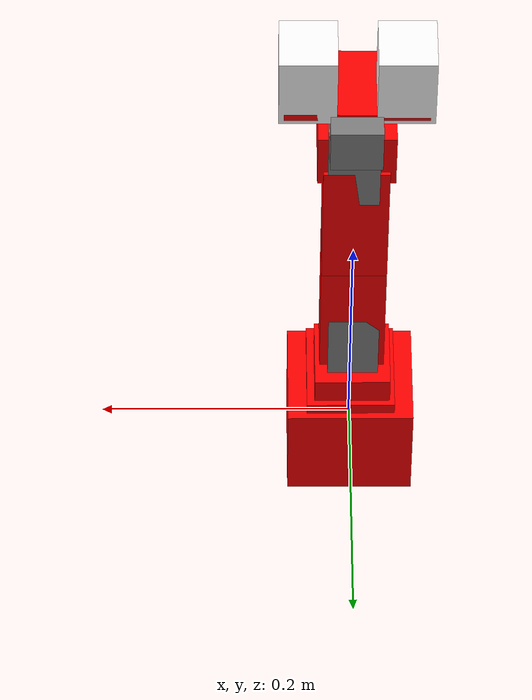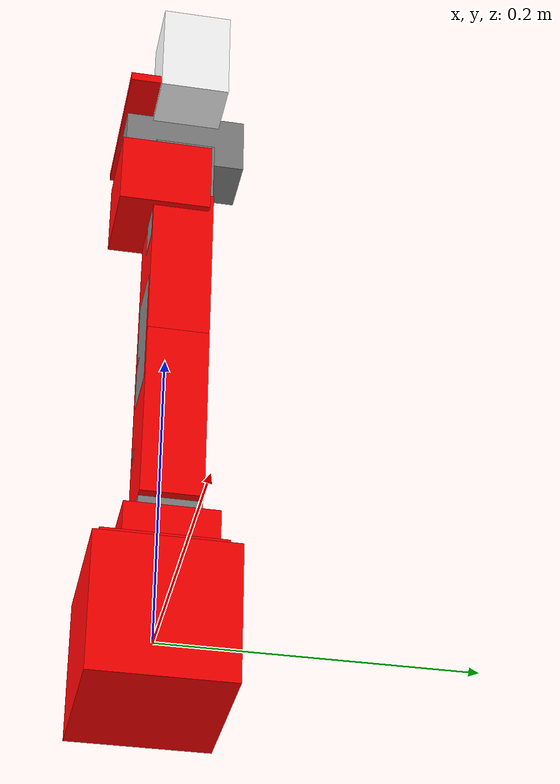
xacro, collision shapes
<?xml version="1.0"?>

<robot xmlns:xacro="http://www.ros.org/wiki/xacro" name="arm">

  <material name="red">
    <color rgba="1 0 0 1"/>
  </material>

  <material name="gray">
    <color rgba="0.5 0.5 0.5 1.0"/>
  </material>

  <material name="purple">
    <color rgba="0.20784313725490197 0.023529411764705882 0.24313725490196078 1.0"/>
  </material>

  <link name="base_link">
    <visual>
      <geometry>
        <mesh filename="package://arm_description/meshes/base_link.stl" scale="0.001 0.001 0.001"/>
      </geometry>
      <origin rpy="0 0 0" xyz="0 0 0"/>
      <material name="red"/>
    </visual>
    <collision>
      <geometry>
        <box size="0.1 0.09 0.09"/>
      </geometry>
      <origin rpy="0 0 0" xyz="0 0 0"/>
    </collision>
    <inertial>
      <mass value="0.1"/>
      <inertia ixx="1.06682889e+08" ixy="0.0" ixz="0.0" iyy="9.92165844e+07" iyz="0.0" izz="1.26939175e+08"/>
    </inertial>
  </link>

  <joint name="base_1_2" type="fixed">
    <parent link="base_link"/>
    <child link="base_turn"/>
    <origin xyz="-0.0011 -0.011 0.05"/>
  </joint>

  <link name="base_turn">
    <visual>
      <geometry>
        <mesh filename="package://arm_description/meshes/base_turn.stl" scale="0.001 0.001 0.001"/>
      </geometry>
      <origin rpy="0 0 0" xyz="0 0 0"/>
      <material name="red"/>
    </visual>
    <collision>
      <geometry>
        <box size="0.07 0.079 0.01"/>
      </geometry>
      <origin rpy="0 0 0" xyz="0.0011 0.011 0"/>
    </collision>
    <inertial>
      <mass value="0.1"/>
      <inertia ixx="1.35223008e+07" ixy="0.0" ixz="0.0" iyy="8.13814925e+06" iyz="0.0" izz="2.14903814e+07"/>
    </inertial>
  </link>

  <joint name="j0" type="revolute">
    <parent link="base_turn"/>
    <child link="base_turn_rot"/>
    <origin xyz="-0.0 0.0155 0.013" rpy = "0 0 -1.57"/>
    <axis xyz="0 0 1" />
    <limit effort="300" velocity="0.1" lower="-2.57" upper="2.57"/>
  </joint>

  <link name="base_turn_rot">
    <visual>
      <geometry>
        <mesh filename="package://arm_description/meshes/base_turn_table_rot.stl" scale="0.001 0.001 0.001"/>
      </geometry>
      <material name="red"/>
    </visual>
    <collision>
      <geometry>
        <box size="0.06 0.06 0.03"/>
      </geometry>
      <origin rpy="0 0 0" xyz="0 0 0"/>
    </collision>
    <inertial>
      <mass value="0.1"/>
      <inertia ixx="0.001" ixy="0.0" ixz="0.0" iyy="0.001" iyz="0.0" izz="0.001"/>
    </inertial>
  </link>

  <joint name="base_turn_rot_dyn2" type="fixed">
    <parent link="base_turn_rot"/>
    <child link="dyn2"/>
    <origin xyz="0 0 0.0385" rpy="0 1.57 1.57 "/>
  </joint>

  <link name="dyn2">
    <visual>
      <geometry>
        <mesh filename="package://arm_description/meshes/dyn.stl" scale="0.01 0.01 0.01"/>
      </geometry>
      <origin rpy="0 0 0" xyz="0 0 0"/>
      <material name="gray"/>
    </visual>
    <collision>
      <geometry>
        <box size="0.08 0.04 0.04"/>
      </geometry>
      <origin rpy="0 0 0" xyz="0 0 0"/>
    </collision>
    <inertial>
      <mass value="0.1"/>
      <inertia ixx="6.90013881e-05" ixy="0.0" ixz="0.0" iyy="1.24554875e-04" iyz="0.0" izz="1.04295793e-04"/>
    </inertial>
  </link>

  <joint name="j1" type="revolute">
    <parent link="dyn2"/>
    <child link="dyn2_r"/>
    <origin xyz="0 0 0.0" rpy="0 0 0"/>
    <axis xyz="0 0 1" />
    <limit effort="300" velocity="0.1" lower="-2" upper="2"/>
  </joint>

  <link name="dyn2_r">
  </link>

  <joint name="dyn2_f4" type="fixed">
    <parent link="dyn2_r"/>
    <child link="f4"/>
    <origin xyz="-0.047 0.0 -0.003" rpy="0 1.57 1.57"/>
  </joint>

  <link name="f4">
    <visual>
      <geometry>
        <mesh filename="package://arm_description/meshes/f4_n_f3.stl" scale="0.001 0.001 0.001"/>
      </geometry>
      <origin rpy="0 0 0" xyz="0 0 0"/>
      <material name="red"/>
    </visual>
    <collision>
      <geometry>
        <box size="0.051 0.12 0.04"/>
      </geometry>
      <origin rpy="0 0 0" xyz="-0.004 0.0 0"/>
    </collision>
     <inertial>
      <mass value="0.1"/>
      <inertia ixx="6.90013881e-05" ixy="0.0" ixz="0.0" iyy="1.24554875e-04" iyz="0.0" izz="1.04295793e-04"/>
    </inertial>
  </link>

  <joint name="d4_dyn3" type="fixed">
    <parent link="f4"/>
    <child link="dyn3"/>
    <origin xyz="-0.004 0.0645 0 " rpy="-1.57 3.14 1.57"/>
  </joint>

  <link name="dyn3">
    <visual>
      <geometry>
        <mesh filename="package://arm_description/meshes/dyn.stl" scale="0.01 0.01 0.01"/>
      </geometry>
      <origin rpy="0 0 0" xyz="0 0 0"/>
      <material name="gray"/>
    </visual>
    <collision>
      <geometry>
        <box size="0.08 0.04 0.04"/>
      </geometry>
      <origin rpy="0 0 0" xyz="0 0 0"/>
    </collision>
     <inertial>
      <mass value="0.1"/>
      <inertia ixx="6.90013881e-05" ixy="0.0" ixz="0.0" iyy="1.24554875e-04" iyz="0.0" izz="1.04295793e-04"/>
    </inertial>
  </link>

  <joint name="j2" type="revolute">
    <parent link="dyn3"/>
    <child link="dyn3_r"/>
    <origin xyz="0 0 0.0" rpy="0 0 0"/>
    <axis xyz="0 0 1" />
    <limit effort="300" velocity="0.1" lower="-3.14" upper="3.14"/>
  </joint>

  <link name="dyn3_r">
  </link>

  <joint name="dyn3_f5" type="fixed">
    <parent link="dyn3_r"/>
    <child link="f5"/>
    <origin xyz="-0.046 -0.0 -0.002" rpy="1.57 1.57 3.1415 "/>
  </joint>

  <link name="f5">
    <visual>
      <geometry>
        <mesh filename="package://arm_description/meshes/f4_n_f3.stl" scale="0.001 0.001 0.001"/>
      </geometry>
      <origin rpy="0 0 0" xyz="0 0 0"/>
      <material name="red"/>
    </visual>
    <collision>
      <geometry>
        <box size="0.051 0.12 0.04"/>
      </geometry>
      <origin rpy="0 0 0" xyz="-0.002 0.0 0"/>
    </collision>
    <inertial>
      <mass value="0.1"/>
      <inertia ixx="0.001" ixy="0.0" ixz="0.0" iyy="0.001" iyz="0.0" izz="0.001"/>
      </inertial>
  </link>

  <joint name="f5_dyn4" type="fixed">
    <parent link="f5"/>
    <child link="dyn4"/>
    <origin xyz="-0.004 0.065 -0.0" rpy="-1.57 3.1415 1.57 "/>
  </joint>

  <link name="dyn4">
    <visual>
      <geometry>
        <mesh filename="package://arm_description/meshes/dyn.stl" scale="0.01 0.01 0.01"/>
      </geometry>
      <origin rpy="0 0 0" xyz="0 0 0"/>
      <material name="gray"/>
    </visual>
    <collision>
      <geometry>
        <box size="0.08 0.04 0.04"/>
      </geometry>
      <origin rpy="0 0 0" xyz="0 0 0"/>
    </collision>
    <inertial>
      <mass value="0.1"/>
      <inertia ixx="6.90013881e-05" ixy="0.0" ixz="0.0" iyy="1.24554875e-04" iyz="0.0" izz="1.04295793e-04"/>
    </inertial>
  </link>

  <joint name="j3" type="revolute">
    <parent link="dyn4"/>
    <child link="dyn4_r"/>
    <origin xyz="0 0 0.0" rpy="0 0 0"/>
    <axis xyz="0 0 1" />
    <limit effort="300" velocity="0.1" lower="-3.14" upper="3.14"/>
  </joint>

  <link name="dyn4_r">
  </link>

  <joint name="f5_wrist" type="fixed">
    <parent link="dyn4_r"/>
    <child link="wrist"/>
    <origin xyz="-0.017 -0.013 0.003" rpy="1.57 1.57 -1.57"/>
  </joint>

  <link name="wrist">
    <visual>
      <geometry>
        <mesh filename="package://arm_description/meshes/wrist.stl" scale="0.001 0.001 0.001"/>
      </geometry>
      <origin rpy="0 0 0" xyz="0 0 0"/>
      <material name="red"/>
    </visual>
    <collision>
      <geometry>
        <box size="0.06 0.06 0.05"/>
      </geometry>
      <origin rpy="0 0 0" xyz="0.005 0 -0.01"/>
    </collision>
    <inertial>
      <mass value="0.1"/>
      <inertia ixx="6.90013881e-05" ixy="0.0" ixz="0.0" iyy="1.24554875e-04" iyz="0.0" izz="1.04295793e-04"/>
    </inertial>
  </link>

  <joint name="wrist_dyn5" type="fixed">
    <parent link="wrist"/>
    <child link="dyn5"/>
    <origin xyz="0.0038 -0.013 0.0275" rpy="0 0 1.57"/>
  </joint>

  <link name="dyn5">
    <visual>
      <geometry>
        <mesh filename="package://arm_description/meshes/dyn.stl" scale="0.01 0.01 0.01"/>
      </geometry>
      <origin rpy="0 0 0" xyz="0 0 0"/>
      <material name="gray"/>
    </visual>
    <collision>
      <geometry>
        <box size="0.08 0.04 0.04"/>
      </geometry>
      <origin rpy="0 0 0" xyz="0 0 0"/>
    </collision>
    <inertial>
      <mass value="0.1"/>
      <inertia ixx="6.90013881e-05" ixy="0.0" ixz="0.0" iyy="1.24554875e-04" iyz="0.0" izz="1.04295793e-04"/>
    </inertial>
  </link>

  <joint name="dyn5_dyn5_r" type="fixed">
    <parent link="dyn5"/>
    <child link="dyn5_r"/>
    <origin xyz="0 0 0.0" rpy="0 0 0"/>
    <axis xyz="0 0 1" />
    <limit effort="300" velocity="0.1" lower="-3.14" upper="3.14"/>
  </joint>

  <link name="dyn5_r">
  </link>

  <joint name="wrist_rotate_dyn5" type="fixed">
    <parent link="dyn5_r"/>
    <child link="crawer_base"/>
    <origin xyz="0.015 0 0.019" rpy="0 0 1.57"/>
  </joint>

  <link name="crawer_base">
    <visual>
      <geometry>
        <mesh filename="package://arm_description/meshes/the_crawer_base.stl" scale="0.001 0.001 0.001"/>
      </geometry>
      <origin rpy="0 0 0" xyz="0 0 0"/>
      <material name="red"/>
    </visual>
    <collision>
      <geometry>
        <box size="0.11 0.065 0.006"/>
      </geometry>
      <origin rpy="0 0 0" xyz="0 0.005 0"/>
    </collision>
    <inertial>
      <mass value="0.1"/>
      <inertia ixx="6.90013881e-05" ixy="0.0" ixz="0.0" iyy="1.24554875e-04" iyz="0.0" izz="1.04295793e-04"/>
    </inertial>
  </link>

  <joint name="crawer_base_crawer_left" type="fixed">
    <parent link="crawer_base"/>
    <child link="crawer_left"/>
    <origin xyz="-0.03 0.015 0.01" rpy="0 -1.57 0"/>
  </joint>

  <link name="crawer_left">
    <visual>
      <geometry>
        <mesh filename="package://arm_description/meshes/the_crawer.stl" scale="0.001 0.001 0.001"/>
      </geometry>
      <origin rpy="0 0 0" xyz="0 0 0"/>
      <material name="white">
        <color rgba="1 1 1 1"/>
      </material>
    </visual>
    <collision>
      <geometry>
        <box size="0.065 0.045 0.044"/>
      </geometry>
      <origin rpy="0 0 0" xyz="0.016 0.0 0.007"/>
    </collision>
    <inertial>
      <mass value="0.1"/>
      <inertia ixx="6.90013881e-05" ixy="0.0" ixz="0.0" iyy="1.24554875e-04" iyz="0.0" izz="1.04295793e-04"/>
    </inertial>
  </link>

  <joint name="crawer_base_crawer_right" type="fixed">
    <parent link="crawer_base"/>
    <child link="crawer_right"/>
    <origin xyz="0.03 0.015 0.01" rpy="3.1415 -1.57 0"/>
  </joint>

  <link name="crawer_right">
    <visual>
      <geometry>
        <mesh filename="package://arm_description/meshes/the_crawer.stl" scale="0.001 0.001 0.001"/>
      </geometry>
      <origin rpy="0 0 0" xyz="0 0 0"/>
      <material name="white">
        <color rgba="1 1 1 1"/>
      </material>
    </visual>
    <collision>
      <geometry>
        <box size="0.065 0.045 0.044"/>
      </geometry>
      <origin rpy="0 0 0" xyz="0.016 0.0 0.007"/>
    </collision>
    <inertial>
      <mass value="0.1"/>
      <inertia ixx="6.90013881e-05" ixy="0.0" ixz="0.0" iyy="1.24554875e-04" iyz="0.0" izz="1.04295793e-04"/>
    </inertial>
  </link>

  <xacro:include filename="$(find arm_description)/urdf/camera.xacro"/>

  <gazebo>
    <plugin filename="ign_ros2_control-system" name="ign_ros2_control::IgnitionROS2ControlPlugin">
    <parameters>$(find arm_control)/config/arm_control.yaml</parameters>
      <controller_manager_prefix_node_name>controller_manager</controller_manager_prefix_node_name>
    </plugin>
  </gazebo>

  <gazebo>
    <self_collide>true</self_collide>
  </gazebo>

  <xacro:include filename="$(find arm_description)/urdf/ros2_control/arm_hardware_interface.xacro"/>

  <xacro:arg name="j0_pos" default="0.0"/>
  <xacro:arg name="j1_pos" default="0.0"/>
  <xacro:arg name="j2_pos" default="0.0"/>
  <xacro:arg name="j3_pos" default="0.0"/>

  <ros2_control name="HardwareInterface_Ignition" type="system">

    <hardware>
      <plugin>ign_ros2_control/IgnitionSystem</plugin>
    </hardware>

    <xacro:joint_ros2_control name="j0" initial_pos="$(arg j0_pos)"/>
    <xacro:joint_ros2_control name="j1" initial_pos="$(arg j1_pos)"/>
    <xacro:joint_ros2_control name="j2" initial_pos="$(arg j2_pos)"/>
    <xacro:joint_ros2_control name="j3" initial_pos="$(arg j3_pos)"/>

  </ros2_control>

  <xacro:include filename="$(find arm_gazebo)/urdf/arm_camera.xacro"/>
  <xacro:camera_include name="camera"/>

</robot>

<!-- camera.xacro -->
<robot xmlns:xacro="http://www.ros.org/wiki/xacro" name="camera">

    <joint name="camera_joint" type="fixed">
      <parent link="base_link"/>
      <child link="camera_link"/>
      <origin xyz="0.0 0 0.00" rpy="0.0 0 -1.57"/>
    </joint>

    <link name="camera_link">
      <visual>
        <geometry>
          <box size="0.03 0.03 0.03"/>
        </geometry>
        <material name="purple"/>
        <origin xyz="-0.001 0 0" rpy="0.0 0 0"/>
      </visual>
    </link>

</robot>
